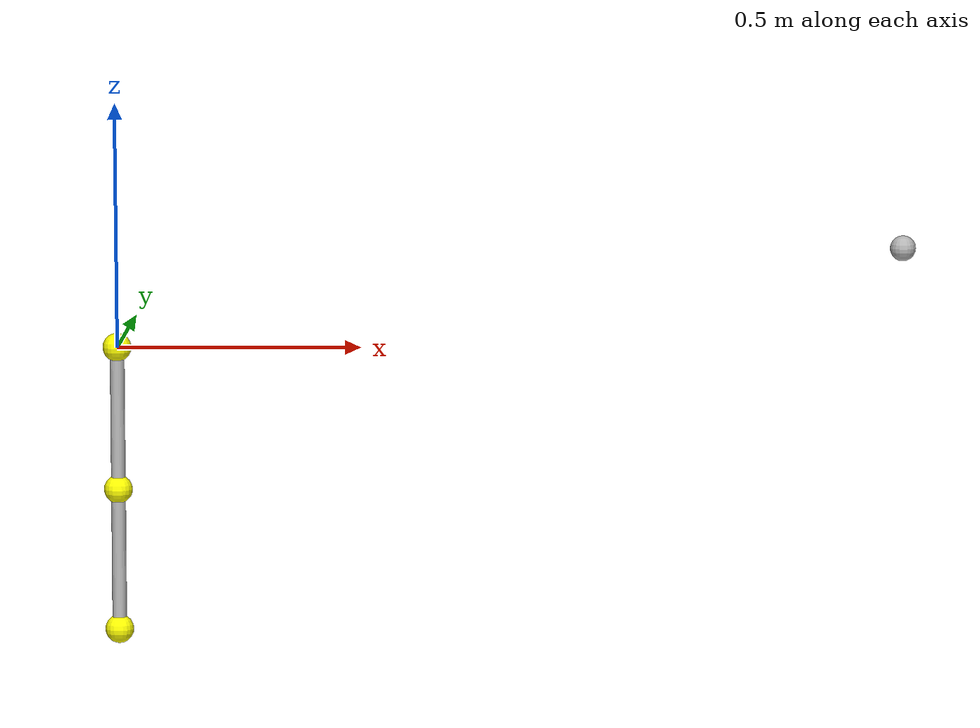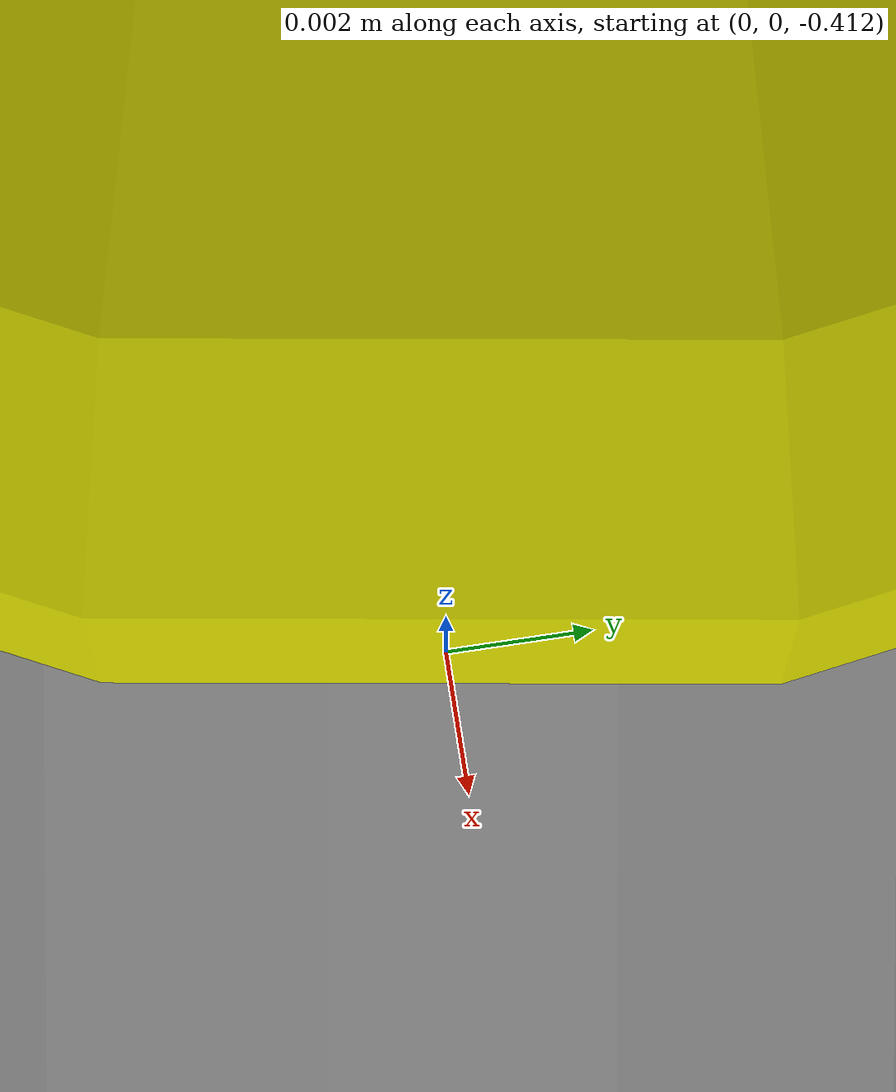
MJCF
<mujoco model="3D_UpperLimb">

  <compiler inertiafromgeom = "auto"
            angle 					= "radian" />

						<option  timestep  = '0.0001'
										iterations = '50'
										integrator = 'Euler'
										   gravity = "0 0 -9.81"
									   collision = 'all' >

							<flag energy = 'enable'/>

						</option>

  <asset>
    <!-- Texture of the surrounding sky box
         setting everything as white-ish color for better visualization -->

     <texture type		= "skybox"
              builtin = "checker"
              rgb1 		= ".1 .2 .3"
              rgb2 		= ".2 .3 .4"
              width	  = "200"
             height 	= "200"
               mark 	= "edge"/>

     <!-- Joint and Limb Color -->
     <material name = "JointColor"	   rgba = "1.0 1.0 0.0 1"/>
     <material name = "LimbColor" 	   rgba = "0.7 0.7 0.7 1"/>
		 <material name = "pointMassColor" rgba = "1.0 1.0 1.0 1.0"/>
     <material name = "RefMassColor"   rgba = "0.2 0.9 0.1 1.0"/>

  </asset>

  <worldbody>

    <body name='cameramover' mocap='true' pos='0 0 0'>
				<camera name='mycamera' pos='0.0 2.0 2.0' euler='1.5707 0 0'/>
  	</body>

    <!-- ============ UPPER ARM START =============== -->
		<body name='upperArm' pos='0 0 0' euler='0 0 0'>
			<inertial pos='0 0 -0.129'     mass='1.595'         diaginertia='0.011917 0.011937 0.001325'/>
			<geom name='shoulderGEOM' type='sphere' pos='0 0 0' material='JointColor' size='0.0294' mass='0'/>
			<joint name='shoulderFlexExt' ref='0' type='hinge' stiffness='0' pos='0 0 0' axis='0 -1 0' />
			<joint name='shoulderAddAbd' ref='0'  type='hinge' stiffness='0' pos='0 0 0' axis='-1 0 0' />
			<joint name='shoulderMedLat' ref='0'  type='hinge' stiffness='0' pos='0 0 0' axis=' 0 0 1' />
			<site name='upperArmCOM' pos='0 0 -0.129' />
			<geom type='cylinder' fromto='0 0 0 0 0 -0.294' material='LimbColor' mass='0' size='0.0147'/>
		<!-- ============ UPPER ARM END   =============== -->

      <!-- ============ FORE ARM START =============== -->
			<body name='foreArm' pos='0 0 -0.294' euler='0 0 0'>
				<inertial pos='0 0 -0.112' mass='0.869'             diaginertia='0.004765 0.004855 0.000472'/>
				<geom name='elbowGEOM' type='sphere' pos='0 0 0' material='JointColor' size='0.0294' mass='0'/>
				<joint name='elbow' ref='0' type='hinge' stiffness='0' pos='0 0 0' axis='0 -1 0'/>
				<geom type='cylinder' fromto='0 0 0 0 0 -0.291' material='LimbColor' mass='0' size='0.0147'/>
				<site name='foreArmCOM' pos='0 0 -0.112' />
				<geom name='geom_EE' type='sphere' pos='0 0 -0.291' material='JointColor' size='0.0294' mass='0.0'/>

				<!-- Can be erased in the future! -->
				<!-- Just attaching point mass at the end of the upper-limb-->
				<body name="node1" euler="0 0 0" pos="0 0 -0.291">
						<inertial pos='0 0 0' mass='0.3' />
				</body>

			</body>
			<!-- ============ FORE ARM END   =============== -->

	</body>

	<geom name='target' type='sphere' pos='1.69352 1.69352 0.0' material='LimbColor' mass='0' size='0.03'/>

  </worldbody>

	<actuator>

		<motor joint = 'shoulderFlexExt' name = 'shoulderFlexExtTorqueMotor' forcelimited = 'false'/>
		<motor joint = 'shoulderAddAbd'  name = 'shoulderAddAbdTorqueMotor'  forcelimited = 'false'/>
		<motor joint = 'shoulderMedLat'  name = 'shoulderMedLatTorqueMotor'  forcelimited = 'false'/>
    <motor joint = 'elbow'           name = 'elbowTorqueMotor'           forcelimited = 'false'/>

  </actuator>

</mujoco>
